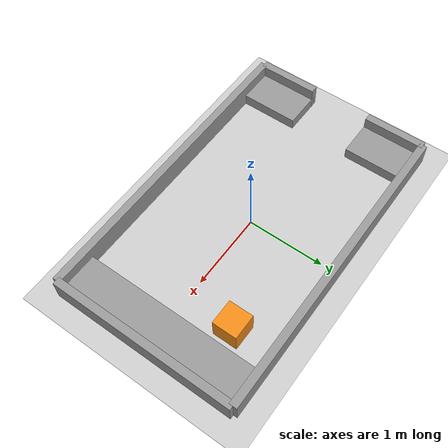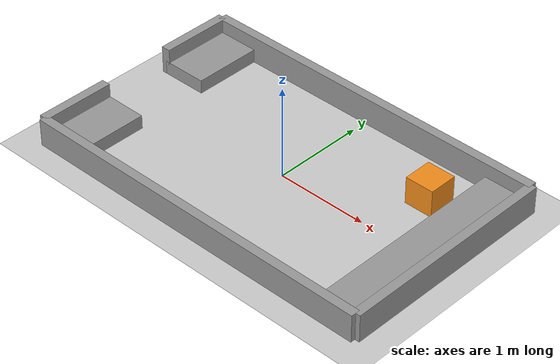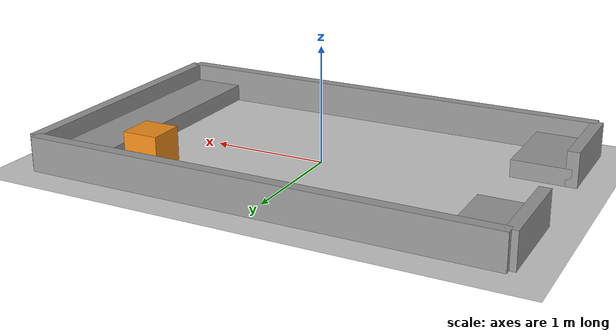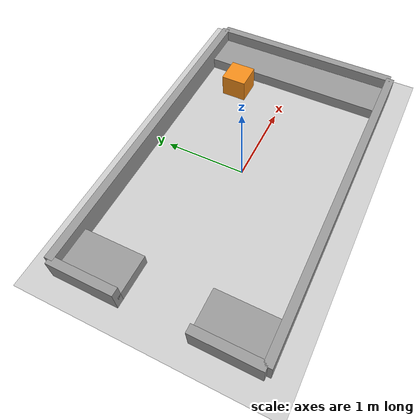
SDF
<sdf version="1.4">
 <world name="default">
  <light name="sun" type="directional">
   <pose>0 0 10 0 -0 0</pose>
   <diffuse>0.8 0.8 0.8 1</diffuse>
   <specular>0.2 0.2 0.2 1</specular>
   <attenuation>
    <range>1000</range>
    <constant>0.9</constant>
    <linear>0.01</linear>
    <quadratic>0.001</quadratic>
   </attenuation>
   <direction>-0.5 0.1 -0.9</direction>
  </light>
  <model name="ground_plane">
   <static>1</static>
   <link name="link">
    <collision name="collision">
     <geometry><plane><normal>0 0 1</normal><size>100 100</size></plane></geometry>
     <surface><friction><ode><mu>100</mu><mu2>50</mu2></ode></friction></surface>
    </collision>
    <visual name="visual">
     <cast_shadows>0</cast_shadows>
     <geometry><plane><normal>0 0 1</normal><size>100 100</size></plane></geometry>
     <material>
      <script><uri>file://media/materials/scripts/gazebo.material</uri><name>Gazebo/Grey</name></script>
     </material>
    </visual>
    <velocity_decay><linear>0</linear><angular>0</angular></velocity_decay>
   </link>
  </model>
  <physics type="ode">
   <max_step_size>0.001</max_step_size>
   <real_time_factor>1</real_time_factor>
   <real_time_update_rate>1000</real_time_update_rate>
   <gravity>0 0 -9.8</gravity>
  </physics>
  <scene><ambient>0.4 0.4 0.4 1</ambient><background>0.7 0.7 0.7 1</background><shadows>1</shadows></scene>
  <spherical_coordinates>
   <surface_model>EARTH_WGS84</surface_model>
   <latitude_deg>0</latitude_deg>
   <longitude_deg>0</longitude_deg>
   <elevation>0</elevation>
   <heading_deg>0</heading_deg>
  </spherical_coordinates>
  <model name="world">
   <link name="wall_1">
    <inertial>
     <pose>-0.468535 8.12398e-05 -0.0281215 0 -0 0</pose>
     <mass>80.01</mass>
     <inertia>
      <ixx>62.5105</ixx>
      <ixy>-0.0111705</ixy>
      <ixz>-0.258296</ixz>
      <iyy>202.433</iyy>
      <iyz>-0.00018279</iyz>
      <izz>256.731</izz>
     </inertia>
    </inertial>
    <collision name="wall_1_collision">
     <pose>0 1.2 0 0 -0 0</pose>
     <geometry><box><size>4 0.1 0.3</size></box></geometry>
    </collision>
    <collision name="wall_1_collision_orange_box">
     <pose>1.25 0.65 0 0 -0 0</pose>
     <geometry><box><size>0.31496 0.31496 0.29778</size></box></geometry>
    </collision>
    <collision name="wall_1_collision_wall_10">
     <pose>1.75 0 -0.075 0 -0 0</pose>
     <geometry><box><size>0.5 2.4 0.15</size></box></geometry>
    </collision>
    <collision name="wall_1_collision_wall_2">
     <pose>2 0 0 0 -0 0</pose>
     <geometry><box><size>0.1 -2.4 0.3</size></box></geometry>
    </collision>
    <collision name="wall_1_collision_wall_3">
     <pose>0 -1.2 0 0 -0 0</pose>
     <geometry><box><size>4 0.1 0.3</size></box></geometry>
    </collision>
    <collision name="wall_1_collision_wall_6">
     <pose>-2 -0.8 0 0 -0 0</pose>
     <geometry><box><size>0.1 0.8 0.3</size></box></geometry>
    </collision>
    <collision name="wall_1_collision_wall_7">
     <pose>-2 0.8 0 0 -0 0</pose>
     <geometry><box><size>0.1 0.8 0.3</size></box></geometry>
    </collision>
    <collision name="wall_1_collision_wall_8">
     <pose>-1.75 0.8 -0.075 0 -0 0</pose>
     <geometry><box><size>0.5 0.8 0.15</size></box></geometry>
    </collision>
    <collision name="wall_1_collision_wall_9">
     <pose>-1.75 -0.8 -0.075 0 -0 0</pose>
     <geometry><box><size>0.5 0.8 0.15</size></box></geometry>
    </collision>
    <visual name="wall_1_visual">
     <pose>0 1.2 0 0 -0 0</pose>
     <geometry><box><size>4 0.1 0.3</size></box></geometry>
     <material><script><name>Gazebo/Gray</name><uri>__default__</uri></script></material>
    </visual>
    <visual name="wall_1_visual_orange_box">
     <pose>1.25 0.65 0 0 -0 0</pose>
     <geometry><box><size>0.31496 0.31496 0.29778</size></box></geometry>
     <material><script><name>Gazebo/Orange</name><uri>__default__</uri></script></material>
    </visual>
    <visual name="wall_1_visual_wall_10">
     <pose>1.75 0 -0.075 0 -0 0</pose>
     <geometry><box><size>0.5 2.4 0.15</size></box></geometry>
     <material><script><name>Gazebo/Gray</name><uri>__default__</uri></script></material>
     <material><script><name>Gazebo/Gray</name><uri>__default__</uri></script></material>
    </visual>
    <visual name="wall_1_visual_wall_2">
     <pose>2 0 0 0 -0 0</pose>
     <geometry><box><size>0.1 -2.4 0.3</size></box></geometry>
     <material><script><name>Gazebo/Gray</name><uri>__default__</uri></script></material>
    </visual>
    <visual name="wall_1_visual_wall_3">
     <pose>0 -1.2 0 0 -0 0</pose>
     <geometry><box><size>4 0.1 0.3</size></box></geometry>
     <material><script><name>Gazebo/Gray</name><uri>__default__</uri></script></material>
    </visual>
    <visual name="wall_1_visual_wall_6">
     <pose>-2 -0.8 0 0 -0 0</pose>
     <geometry><box><size>0.1 0.8 0.3</size></box></geometry>
     <material><script><name>Gazebo/Gray</name><uri>__default__</uri></script></material>
    </visual>
    <visual name="wall_1_visual_wall_7">
     <pose>-2 0.8 0 0 -0 0</pose>
     <geometry><box><size>0.1 0.8 0.3</size></box></geometry>
     <material><script><name>Gazebo/Gray</name><uri>__default__</uri></script></material>
    </visual>
    <visual name="wall_1_visual_wall_8">
     <pose>-1.75 0.8 -0.075 0 -0 0</pose>
     <geometry><box><size>0.5 0.8 0.15</size></box></geometry>
     <material><script><name>Gazebo/Gray</name><uri>__default__</uri></script></material>
    </visual>
    <visual name="wall_1_visual_wall_9">
     <pose>-1.75 -0.8 -0.075 0 -0 0</pose>
     <geometry><box><size>0.5 0.8 0.15</size></box></geometry>
     <material><script><name>Gazebo/Gray</name><uri>__default__</uri></script></material>
    </visual>
    <velocity_decay><linear>0</linear><angular>0</angular></velocity_decay>
    <velocity_decay><linear>0</linear><angular>0</angular></velocity_decay>
    <velocity_decay><linear>0</linear><angular>0</angular></velocity_decay>
    <velocity_decay><linear>0</linear><angular>0</angular></velocity_decay>
    <velocity_decay><linear>0</linear><angular>0</angular></velocity_decay>
    <velocity_decay><linear>0</linear><angular>0</angular></velocity_decay>
    <velocity_decay><linear>0</linear><angular>0</angular></velocity_decay>
    <velocity_decay><linear>0</linear><angular>0</angular></velocity_decay>
    <velocity_decay><linear>0</linear><angular>0</angular></velocity_decay>
    <self_collide>1</self_collide>
   </link>
   <pose>0 0 0.149996 -3e-06 2e-06 -1e-06</pose>
   <static>0</static>
  </model>
 </world>
</sdf>
